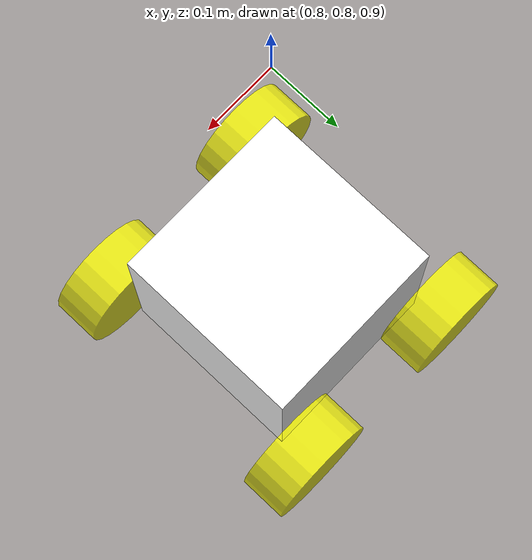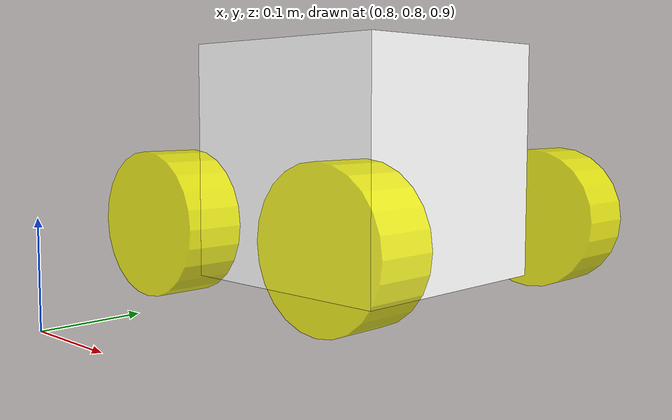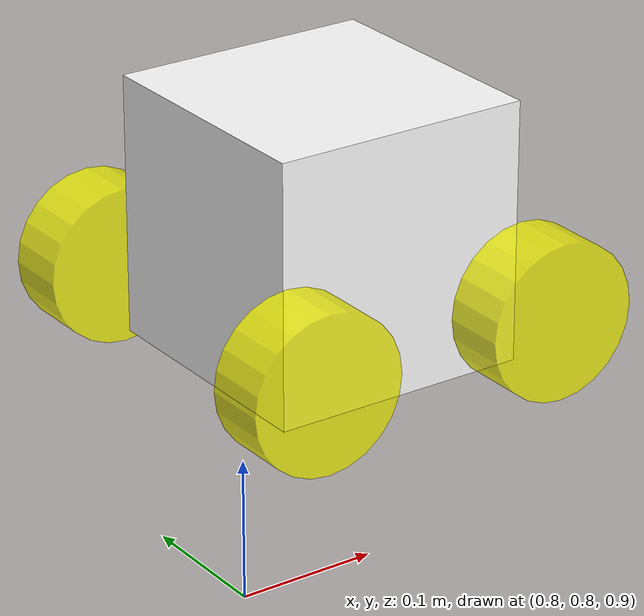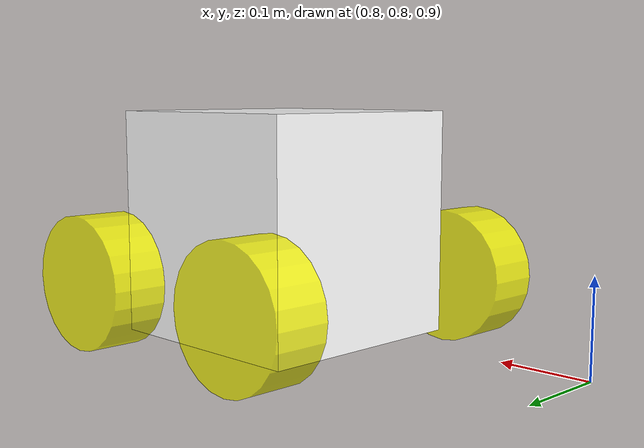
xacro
<?xml version="1.0"?>

<robot name="robot" xmlns:xacro="http://www.ros.org/wiki/xacro">

<!-- 加载xacro文件 -->
<xacro:include filename="$(find my_robot_description)/urdf/common_inertia.xacro"/>
<xacro:include filename="$(find my_robot_description)/urdf/actuator/wheel.urdf.xacro"/>

  <xacro:property name="length_wheel" value="0.05" />
  <xacro:property name="radius_wheel" value="0.06" />
  <xacro:property name="PI" value="3.1415926"/>
  <xacro:property name="dummy_joint_xyz" value="1 1 1" />
  <xacro:macro name="default_inertial" params="mass">
    <inertial>
      <mass value="${mass}" />
      <inertia ixx="0.01" ixy="0.0" ixz="0.0"
                    iyy="0.01" iyz="0.0" izz="0.01" />
    </inertial>
  </xacro:macro>

  <!-- base_link to livox_frame -->
  <xacro:arg name="xyz" default="0.12 0.0 0.175" />
  <xacro:arg name="rpy" default="0 0 0" />

  <link name="dummy"/>

  <link name="base_link">
    <visual>
      <geometry>
        <box size="0.2 .2 .2"/>
      </geometry>
      <origin rpy="0 0 ${PI/2}" xyz="0 0 0.05"/>
      <material name="white">
        <color rgba="1 1 1 1"/>
      </material>
    </visual>
    <collision>
      <geometry>
        <box size="0.2 .2 .2"/>
      </geometry>
      <origin rpy="0 0 ${PI/2}" xyz="0 0 0.05"/>
    </collision>
    <xacro:default_inertial mass="8.2"/>
  </link>

  <joint name="dummy_joint" type="fixed">
     <parent link="dummy"/>
     <child link="base_link"/>
     <origin xyz="${dummy_joint_xyz}" rpy="0 0 0"/>
  </joint>

  <!-- 轮子 -->
  <xacro:wheel_xacro wheel_name="wheel_1" xyz="0.1 0.13 0" />
  <xacro:wheel_xacro wheel_name="wheel_2" xyz="-0.1 0.13 0" />
  <xacro:wheel_xacro wheel_name="wheel_3" xyz="0.1 -0.13 0" />
  <xacro:wheel_xacro wheel_name="wheel_4" xyz="-0.1 -0.13 0" />

<!-- 颜色设置 -->
<xacro:include filename="$(find my_robot_description)/urdf/color.xacro" />

  <!-- Drive controller plugin-->
  <!-- https://github.com/ros-simulation/gazebo_ros_pkgs/wiki/ROS-2-Migration:-Planar-Move -->
  <gazebo>
    <plugin name="mecanum_controller" filename="libgazebo_ros_planar_move.so">
      <ros>
        <!-- Add a namespace -->
        <namespace>/</namespace>
        <!-- Remap the default topic -->
        <remapping>cmd_vel:=cmd_vel_chassis</remapping>
        <remapping>odom:=odom</remapping>
      </ros>

      <!-- Set control loop update rate -->
      <update_rate>100</update_rate>
      <!-- Set odom publish rate -->
      <publish_rate>10</publish_rate>

      <!-- Set if odom required -->
      <publish_odom>false</publish_odom>
      <publish_odom_tf>false</publish_odom_tf>

      <!-- Frame IDs -->
      <odometry_frame>odom</odometry_frame>
      <robot_base_frame>base_link</robot_base_frame>

      <!-- Set odom covariance -->
      <covariance_x>0.0001</covariance_x>
      <covariance_y>0.0001</covariance_y>
      <covariance_yaw>0.01</covariance_yaw>
    </plugin>
  </gazebo>

 <!--传感器加载  -->
 <xacro:include filename="$(find my_robot_description)/urdf/sensor/imu.urdf.xacro" />
 <xacro:include filename="$(find my_robot_description)/urdf/sensor/laser.urdf.xacro" />
 <xacro:include filename="$(find my_robot_description)/urdf/sensor/laser_single.urdf.xacro" />

 <!-- 插件加载 -->
 <xacro:include filename="$(find my_robot_description)/urdf/plugin/imu_plugin.xacro" />
 <xacro:include filename="$(find my_robot_description)/urdf/plugin/laser_plugin.xacro" />
 <xacro:include filename="$(find my_robot_description)/urdf/plugin/laser_plugin_single.xacro" />

<!-- 放入仿真 -->
<xacro:laser_link xyz="0 0 0.02"/>

<!-- 加载gazebo插件 -->
<xacro:gazebo_imu_plugin/>
<xacro:gazebo_laser_plugin />

</robot>

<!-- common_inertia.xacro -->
<robot xmlns:xacro="http://ros.org/wiki/xacro">
  <xacro:macro name="box_inertia" params="m w h d">
    <inertial>
      <mass value="${m}"/>
      <inertia ixx="${(m/12) * (h*h + d*d)}" ixy="0.0" ixz="0.0" iyy="${(m/12) * (w*w + d*d)}" iyz="0.0" izz="${(m/12) * (w*w + h*h)}"/>
    </inertial>
  </xacro:macro>

  <xacro:macro name="cylinder_inertia" params="m r h">
    <inertial>
      <mass value="${m}"/>
      <inertia ixx="${(m/12) * (3*r*r + h*h)}" ixy = "0" ixz = "0" iyy="${(m/12) * (3*r*r + h*h)}" iyz = "0" izz="${(m/2) * (r*r)}"/>
    </inertial>
  </xacro:macro>

  <xacro:macro name="sphere_inertia" params="m r">
    <inertial>
      <mass value="${m}"/>
      <inertia ixx="${(2/5) * m * (r*r)}" ixy="0.0" ixz="0.0" iyy="${(2/5) * m * (r*r)}" iyz="0.0" izz="${(2/5) * m * (r*r)}"/>
    </inertial>
  </xacro:macro>

</robot>

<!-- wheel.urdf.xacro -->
<robot xmlns:xacro="http://ros.org/wiki/xacro" >
    <xacro:macro name="wheel_xacro" params="wheel_name xyz">
            <!-- 机器人的IMU部件，惯性测量传感器 -->
        <link name="${wheel_name}_link">
            <visual>
                <!-- 沿着自己几何中心的偏移和旋转量 -->
                <origin xyz="0 0 0" rpy="1.57079 0 0"/>
                <!-- 几何形状 -->
                <geometry>
                    <cylinder length="${length_wheel}" radius="${radius_wheel}"/>
                </geometry>
                <!-- 材质颜色 -->
                <material name="yellow">
                    <color rgba="1.0 1.0 0.0 0.8"/>
                </material>
            </visual>
            <!-- 碰撞描述 -->
            <collision>
                <origin xyz="0 0 0" rpy="1.57079 0 0"/>
                <geometry>
                    <cylinder length="${length_wheel}" radius="${radius_wheel}"/>
                </geometry>
                <material name="yellow">
                    <color rgba="1.0 1.0 0.0 0.8"/>
                </material>
            </collision>
            <!-- 惯性描述 -->
            <mu1>0.5</mu1>
            <mu2>0.5</mu2>
            <xacro:cylinder_inertia m="0.5" r="${radius_wheel}" h="${length_wheel}"/>
        </link>

        <!-- 机器人的关节,用于组成 -->
        <joint name="${wheel_name}_joint" type="continuous">
            <parent link="base_link"/>
            <child link="${wheel_name}_link"/>
            <origin xyz="${xyz}" rpy="0 0 0"/>
            <axis xyz="0 1 0"/>
        </joint>

    </xacro:macro>
</robot>

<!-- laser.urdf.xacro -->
<robot xmlns:xacro="http://ros.org/wiki/xacro" >
    <xacro:macro name="laser_link" params="xyz">
            <!-- 雷达支撑杆 -->
            <link name="laser_cylinder_link">
                <visual>
                    <origin xyz="0 0 0" rpy="0 0 0"/>
                    <geometry>
                        <cylinder length="0.02" radius="0.01"/>
                    </geometry>
                    <material name="black">
                        <color rgba="0.0 0.0 0.0 1.0"/>
                    </material>
                </visual>
                <!-- 碰撞描述 -->
                <collision>
                    <origin xyz="0 0 0" rpy="0 0 0"/>
                    <geometry>
                        <cylinder length="0.01" radius="0.01"/>
                    </geometry>
                    <material name="black">
                        <color rgba="0.0 0.0 0.0 1.0"/>
                    </material>
                </collision>
                <!-- 惯性描述 -->
                <xacro:cylinder_inertia m="0.02" r="0.01" h="0.02"/>
            </link>

            <!-- 雷达 -->
            <link name="laser_link">
                <visual>
                    <origin xyz="0 0 0" rpy="0 0 0"/>
                    <geometry>
                        <cylinder length="0.02" radius="0.02"/>
                    </geometry>
                    <material name="black">
                        <color rgba="0.0 0.0 0.0 1.0"/>
                    </material>
                </visual>
                <!-- 碰撞描述 -->
                <collision>
                    <origin xyz="0 0 0" rpy="0 0 0"/>
                    <geometry>
                        <cylinder length="0.02" radius="0.02"/>
                    </geometry>
                    <material name="black">
                        <color rgba="0.0 0.0 0.0 1.0"/>
                    </material>
                </collision>
                <!-- 惯性描述 -->
                <xacro:cylinder_inertia m="0.1" r="0.02" h="0.02"/>
            </link>

            <!-- 雷达与支撑杆的关节 -->
            <joint name="joint_joint" type="fixed">
                <parent link="laser_cylinder_link"/>
                <child link="laser_link"/>
                <origin xyz="0 0 0.01" rpy="0 0 0"/>
            </joint>

            <!-- 支撑杆与baselink的关节 -->
            <joint name="laser_cylinder_joint" type="fixed">
                <parent link="base_link"/>
                <child link="laser_cylinder_link"/>
                <origin xyz="${xyz}" rpy="0 0 0"/>
            </joint>

            <gazebo reference="laser_link">
                <material>Gazebo/Black</material>
            </gazebo>

            <gazebo reference="laser_cylinder_link">
                <material>Gazebo/Black</material>
            </gazebo>

            </xacro:macro>
</robot>
